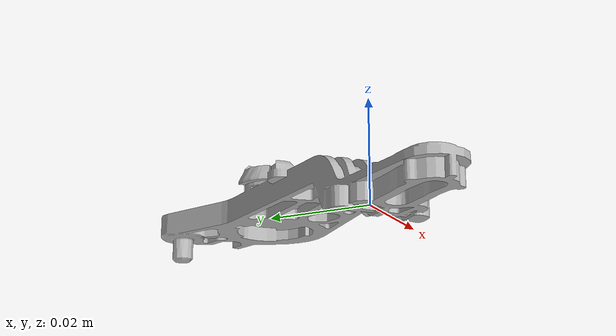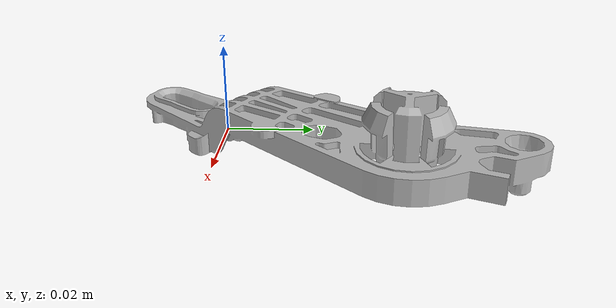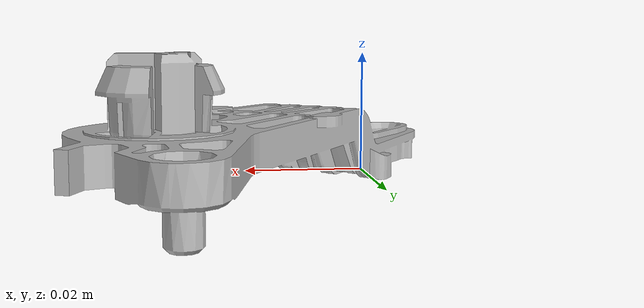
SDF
<?xml version="1.0"?>
<sdf version="1.6">
    <model name="HV7">
        <pose>0 0 0 0 0 0</pose>
        <static>true</static>
        <link name="HV7">
            <inertial>
                <mass>0.2</mass>
                <inertia>
                    <ixx>0.0005</ixx>
                    <ixy>0.0</ixy>
                    <ixz>0.0</ixz>
                    <iyy>0.0005</iyy>
                    <iyz>0.0</iyz>
                    <izz>0.0005</izz>
                </inertia>
            </inertial>
            <collision name="collishin">
                <geometry>
                    <mesh>
                        <uri>model://HV7/meshes/HV7_1.stl</uri>
                    </mesh>
                </geometry>
            </collision>
            <visual name="visual">
                <geometry>
                    <mesh>
                        <uri>model://HV7/meshes/HV7_1.stl</uri>
                    </mesh>
                </geometry>
            </visual>
        </link>
    </model>
</sdf>
